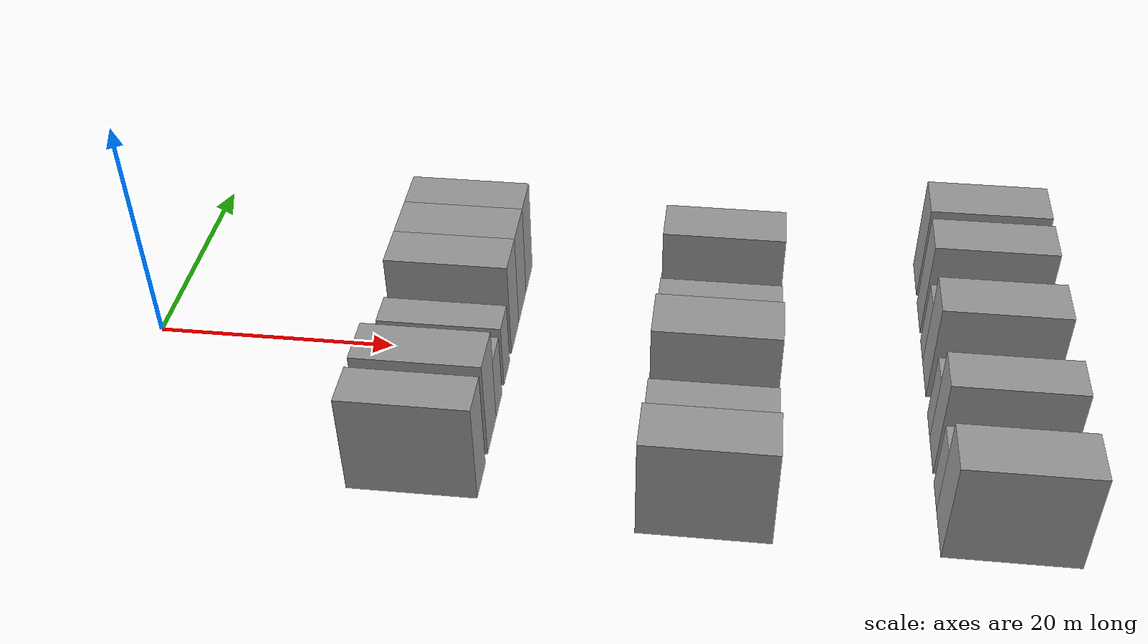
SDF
<sdf version="1.6">
 <world name="default">
  <model name="building_59">
   <static>1</static>
   <pose>25.0000 -14.5144 0 0.000000 0.000000 0.000000</pose>
   <link name="link">
    <pose>0 0 4.50 0 0 0</pose>
    <collision name="collision"><geometry><box><size>10.0000 3.6012 9.0000</size></box></geometry></collision>
    <visual name="visual">
     <cast_shadows>0</cast_shadows>
     <geometry><box><size>10.0000 3.6012 9.0000</size></box></geometry>
     <material>
      <script>
       <uri>model://grey_wall/materials/scripts</uri>
       <uri>model://grey_wall/materials/textures</uri>
       <name>vrc/grey_wall</name>
      </script>
     </material>
    </visual>
   </link>
  </model>
  <model name="building_60">
   <static>1</static>
   <pose>25.0000 -9.7171 0 0.000000 0.000000 0.000000</pose>
   <link name="link">
    <pose>0 0 4.50 0 0 0</pose>
    <collision name="collision"><geometry><box><size>10.0000 3.9933 9.0000</size></box></geometry></collision>
    <visual name="visual">
     <cast_shadows>0</cast_shadows>
     <geometry><box><size>10.0000 3.9933 9.0000</size></box></geometry>
     <material>
      <script>
       <uri>model://grey_wall/materials/scripts</uri>
       <uri>model://grey_wall/materials/textures</uri>
       <name>vrc/grey_wall</name>
      </script>
     </material>
    </visual>
   </link>
  </model>
  <model name="building_61">
   <static>1</static>
   <pose>25.0000 -6.3009 0 0.000000 0.000000 0.000000</pose>
   <link name="link">
    <pose>0 0 3.00 0 0 0</pose>
    <collision name="collision"><geometry><box><size>10.0000 2.8391 6.0000</size></box></geometry></collision>
    <visual name="visual">
     <cast_shadows>0</cast_shadows>
     <geometry><box><size>10.0000 2.8391 6.0000</size></box></geometry>
     <material>
      <script>
       <uri>model://grey_wall/materials/scripts</uri>
       <uri>model://grey_wall/materials/textures</uri>
       <name>vrc/grey_wall</name>
      </script>
     </material>
    </visual>
   </link>
  </model>
  <model name="building_62">
   <static>1</static>
   <pose>25.0000 -2.4091 0 0.000000 0.000000 0.000000</pose>
   <link name="link">
    <pose>0 0 3.00 0 0 0</pose>
    <collision name="collision"><geometry><box><size>10.0000 2.9446 6.0000</size></box></geometry></collision>
    <visual name="visual">
     <cast_shadows>0</cast_shadows>
     <geometry><box><size>10.0000 2.9446 6.0000</size></box></geometry>
     <material>
      <script>
       <uri>model://grey_wall/materials/scripts</uri>
       <uri>model://grey_wall/materials/textures</uri>
       <name>vrc/grey_wall</name>
      </script>
     </material>
    </visual>
   </link>
  </model>
  <model name="building_63">
   <static>1</static>
   <pose>25.0000 2.0167 0 0.000000 0.000000 0.000000</pose>
   <link name="link">
    <pose>0 0 4.50 0 0 0</pose>
    <collision name="collision"><geometry><box><size>10.0000 3.9069 9.0000</size></box></geometry></collision>
    <visual name="visual">
     <cast_shadows>0</cast_shadows>
     <geometry><box><size>10.0000 3.9069 9.0000</size></box></geometry>
     <material>
      <script>
       <uri>model://grey_wall/materials/scripts</uri>
       <uri>model://grey_wall/materials/textures</uri>
       <name>vrc/grey_wall</name>
      </script>
     </material>
    </visual>
   </link>
  </model>
  <model name="building_64">
   <static>1</static>
   <pose>25.0000 6.0637 0 0.000000 0.000000 0.000000</pose>
   <link name="link">
    <pose>0 0 4.50 0 0 0</pose>
    <collision name="collision"><geometry><box><size>10.0000 4.1870 9.0000</size></box></geometry></collision>
    <visual name="visual">
     <cast_shadows>0</cast_shadows>
     <geometry><box><size>10.0000 4.1870 9.0000</size></box></geometry>
     <material>
      <script>
       <uri>model://grey_wall/materials/scripts</uri>
       <uri>model://grey_wall/materials/textures</uri>
       <name>vrc/grey_wall</name>
      </script>
     </material>
    </visual>
   </link>
  </model>
  <model name="building_65">
   <static>1</static>
   <pose>25.0000 10.0209 0 0.000000 0.000000 0.000000</pose>
   <link name="link">
    <pose>0 0 4.50 0 0 0</pose>
    <collision name="collision"><geometry><box><size>10.0000 3.7274 9.0000</size></box></geometry></collision>
    <visual name="visual">
     <cast_shadows>0</cast_shadows>
     <geometry><box><size>10.0000 3.7274 9.0000</size></box></geometry>
     <material>
      <script>
       <uri>model://grey_wall/materials/scripts</uri>
       <uri>model://grey_wall/materials/textures</uri>
       <name>vrc/grey_wall</name>
      </script>
     </material>
    </visual>
   </link>
  </model>
  <model name="building_175">
   <static>1</static>
   <pose>47.0000 -16.2961 0 0.000000 0.000000 0.000000</pose>
   <link name="link">
    <pose>0 0 4.50 0 0 0</pose>
    <collision name="collision"><geometry><box><size>10.0000 4.2819 9.0000</size></box></geometry></collision>
    <visual name="visual">
     <cast_shadows>0</cast_shadows>
     <geometry><box><size>10.0000 4.2819 9.0000</size></box></geometry>
     <material>
      <script>
       <uri>model://grey_wall/materials/scripts</uri>
       <uri>model://grey_wall/materials/textures</uri>
       <name>vrc/grey_wall</name>
      </script>
     </material>
    </visual>
   </link>
  </model>
  <model name="building_176">
   <static>1</static>
   <pose>47.0000 -12.6715 0 0.000000 0.000000 0.000000</pose>
   <link name="link">
    <pose>0 0 3.00 0 0 0</pose>
    <collision name="collision"><geometry><box><size>10.0000 2.9674 6.0000</size></box></geometry></collision>
    <visual name="visual">
     <cast_shadows>0</cast_shadows>
     <geometry><box><size>10.0000 2.9674 6.0000</size></box></geometry>
     <material>
      <script>
       <uri>model://grey_wall/materials/scripts</uri>
       <uri>model://grey_wall/materials/textures</uri>
       <name>vrc/grey_wall</name>
      </script>
     </material>
    </visual>
   </link>
  </model>
  <model name="building_177">
   <static>1</static>
   <pose>47.0000 -9.7440 0 0.000000 0.000000 0.000000</pose>
   <link name="link">
    <pose>0 0 3.00 0 0 0</pose>
    <collision name="collision"><geometry><box><size>10.0000 2.8874 6.0000</size></box></geometry></collision>
    <visual name="visual">
     <cast_shadows>0</cast_shadows>
     <geometry><box><size>10.0000 2.8874 6.0000</size></box></geometry>
     <material>
      <script>
       <uri>model://grey_wall/materials/scripts</uri>
       <uri>model://grey_wall/materials/textures</uri>
       <name>vrc/grey_wall</name>
      </script>
     </material>
    </visual>
   </link>
  </model>
  <model name="building_178">
   <static>1</static>
   <pose>47.0000 -4.0553 0 0.000000 0.000000 0.000000</pose>
   <link name="link">
    <pose>0 0 4.50 0 0 0</pose>
    <collision name="collision"><geometry><box><size>10.0000 4.4900 9.0000</size></box></geometry></collision>
    <visual name="visual">
     <cast_shadows>0</cast_shadows>
     <geometry><box><size>10.0000 4.4900 9.0000</size></box></geometry>
     <material>
      <script>
       <uri>model://grey_wall/materials/scripts</uri>
       <uri>model://grey_wall/materials/textures</uri>
       <name>vrc/grey_wall</name>
      </script>
     </material>
    </visual>
   </link>
  </model>
  <model name="building_179">
   <static>1</static>
   <pose>47.0000 -0.3727 0 0.000000 0.000000 0.000000</pose>
   <link name="link">
    <pose>0 0 3.00 0 0 0</pose>
    <collision name="collision"><geometry><box><size>10.0000 2.8753 6.0000</size></box></geometry></collision>
    <visual name="visual">
     <cast_shadows>0</cast_shadows>
     <geometry><box><size>10.0000 2.8753 6.0000</size></box></geometry>
     <material>
      <script>
       <uri>model://grey_wall/materials/scripts</uri>
       <uri>model://grey_wall/materials/textures</uri>
       <name>vrc/grey_wall</name>
      </script>
     </material>
    </visual>
   </link>
  </model>
  <model name="building_180">
   <static>1</static>
   <pose>47.0000 2.4995 0 0.000000 0.000000 0.000000</pose>
   <link name="link">
    <pose>0 0 3.00 0 0 0</pose>
    <collision name="collision"><geometry><box><size>10.0000 2.8692 6.0000</size></box></geometry></collision>
    <visual name="visual">
     <cast_shadows>0</cast_shadows>
     <geometry><box><size>10.0000 2.8692 6.0000</size></box></geometry>
     <material>
      <script>
       <uri>model://grey_wall/materials/scripts</uri>
       <uri>model://grey_wall/materials/textures</uri>
       <name>vrc/grey_wall</name>
      </script>
     </material>
    </visual>
   </link>
  </model>
  <model name="building_181">
   <static>1</static>
   <pose>47.0000 7.9766 0 0.000000 0.000000 0.000000</pose>
   <link name="link">
    <pose>0 0 4.50 0 0 0</pose>
    <collision name="collision"><geometry><box><size>10.0000 4.0850 9.0000</size></box></geometry></collision>
    <visual name="visual">
     <cast_shadows>0</cast_shadows>
     <geometry><box><size>10.0000 4.0850 9.0000</size></box></geometry>
     <material>
      <script>
       <uri>model://grey_wall/materials/scripts</uri>
       <uri>model://grey_wall/materials/textures</uri>
       <name>vrc/grey_wall</name>
      </script>
     </material>
    </visual>
   </link>
  </model>
  <model name="building_182">
   <static>1</static>
   <pose>47.0000 11.2383 0 0.000000 0.000000 0.000000</pose>
   <link name="link">
    <pose>0 0 3.00 0 0 0</pose>
    <collision name="collision"><geometry><box><size>10.0000 2.4383 6.0000</size></box></geometry></collision>
    <visual name="visual">
     <cast_shadows>0</cast_shadows>
     <geometry><box><size>10.0000 2.4383 6.0000</size></box></geometry>
     <material>
      <script>
       <uri>model://grey_wall/materials/scripts</uri>
       <uri>model://grey_wall/materials/textures</uri>
       <name>vrc/grey_wall</name>
      </script>
     </material>
    </visual>
   </link>
  </model>
  <model name="building_297">
   <static>1</static>
   <pose>69.0000 -16.1501 0 0.000000 0.000000 0.000000</pose>
   <link name="link">
    <pose>0 0 4.50 0 0 0</pose>
    <collision name="collision"><geometry><box><size>10.0000 4.4970 9.0000</size></box></geometry></collision>
    <visual name="visual">
     <cast_shadows>0</cast_shadows>
     <geometry><box><size>10.0000 4.4970 9.0000</size></box></geometry>
     <material>
      <script>
       <uri>model://grey_wall/materials/scripts</uri>
       <uri>model://grey_wall/materials/textures</uri>
       <name>vrc/grey_wall</name>
      </script>
     </material>
    </visual>
   </link>
  </model>
  <model name="building_298">
   <static>1</static>
   <pose>69.0000 -12.4903 0 0.000000 0.000000 0.000000</pose>
   <link name="link">
    <pose>0 0 3.00 0 0 0</pose>
    <collision name="collision"><geometry><box><size>10.0000 2.8227 6.0000</size></box></geometry></collision>
    <visual name="visual">
     <cast_shadows>0</cast_shadows>
     <geometry><box><size>10.0000 2.8227 6.0000</size></box></geometry>
     <material>
      <script>
       <uri>model://grey_wall/materials/scripts</uri>
       <uri>model://grey_wall/materials/textures</uri>
       <name>vrc/grey_wall</name>
      </script>
     </material>
    </visual>
   </link>
  </model>
  <model name="building_299">
   <static>1</static>
   <pose>69.0000 -8.1899 0 0.000000 0.000000 0.000000</pose>
   <link name="link">
    <pose>0 0 4.50 0 0 0</pose>
    <collision name="collision"><geometry><box><size>10.0000 3.7782 9.0000</size></box></geometry></collision>
    <visual name="visual">
     <cast_shadows>0</cast_shadows>
     <geometry><box><size>10.0000 3.7782 9.0000</size></box></geometry>
     <material>
      <script>
       <uri>model://grey_wall/materials/scripts</uri>
       <uri>model://grey_wall/materials/textures</uri>
       <name>vrc/grey_wall</name>
      </script>
     </material>
    </visual>
   </link>
  </model>
  <model name="building_300">
   <static>1</static>
   <pose>69.0000 -4.9347 0 0.000000 0.000000 0.000000</pose>
   <link name="link">
    <pose>0 0 3.00 0 0 0</pose>
    <collision name="collision"><geometry><box><size>10.0000 2.7321 6.0000</size></box></geometry></collision>
    <visual name="visual">
     <cast_shadows>0</cast_shadows>
     <geometry><box><size>10.0000 2.7321 6.0000</size></box></geometry>
     <material>
      <script>
       <uri>model://grey_wall/materials/scripts</uri>
       <uri>model://grey_wall/materials/textures</uri>
       <name>vrc/grey_wall</name>
      </script>
     </material>
    </visual>
   </link>
  </model>
  <model name="building_301">
   <static>1</static>
   <pose>69.0000 0.5396 0 0.000000 0.000000 0.000000</pose>
   <link name="link">
    <pose>0 0 4.50 0 0 0</pose>
    <collision name="collision"><geometry><box><size>10.0000 4.2165 9.0000</size></box></geometry></collision>
    <visual name="visual">
     <cast_shadows>0</cast_shadows>
     <geometry><box><size>10.0000 4.2165 9.0000</size></box></geometry>
     <material>
      <script>
       <uri>model://grey_wall/materials/scripts</uri>
       <uri>model://grey_wall/materials/textures</uri>
       <name>vrc/grey_wall</name>
      </script>
     </material>
    </visual>
   </link>
  </model>
  <model name="building_302">
   <static>1</static>
   <pose>69.0000 4.0239 0 0.000000 0.000000 0.000000</pose>
   <link name="link">
    <pose>0 0 3.00 0 0 0</pose>
    <collision name="collision"><geometry><box><size>10.0000 2.7520 6.0000</size></box></geometry></collision>
    <visual name="visual">
     <cast_shadows>0</cast_shadows>
     <geometry><box><size>10.0000 2.7520 6.0000</size></box></geometry>
     <material>
      <script>
       <uri>model://grey_wall/materials/scripts</uri>
       <uri>model://grey_wall/materials/textures</uri>
       <name>vrc/grey_wall</name>
      </script>
     </material>
    </visual>
   </link>
  </model>
  <model name="building_303">
   <static>1</static>
   <pose>69.0000 8.4220 0 0.000000 0.000000 0.000000</pose>
   <link name="link">
    <pose>0 0 4.50 0 0 0</pose>
    <collision name="collision"><geometry><box><size>10.0000 4.0442 9.0000</size></box></geometry></collision>
    <visual name="visual">
     <cast_shadows>0</cast_shadows>
     <geometry><box><size>10.0000 4.0442 9.0000</size></box></geometry>
     <material>
      <script>
       <uri>model://grey_wall/materials/scripts</uri>
       <uri>model://grey_wall/materials/textures</uri>
       <name>vrc/grey_wall</name>
      </script>
     </material>
    </visual>
   </link>
  </model>
  <model name="building_304">
   <static>1</static>
   <pose>69.0000 13.6377 0 0.000000 0.000000 0.000000</pose>
   <link name="link">
    <pose>0 0 4.50 0 0 0</pose>
    <collision name="collision"><geometry><box><size>10.0000 4.3872 9.0000</size></box></geometry></collision>
    <visual name="visual">
     <cast_shadows>0</cast_shadows>
     <geometry><box><size>10.0000 4.3872 9.0000</size></box></geometry>
     <material>
      <script>
       <uri>model://grey_wall/materials/scripts</uri>
       <uri>model://grey_wall/materials/textures</uri>
       <name>vrc/grey_wall</name>
      </script>
     </material>
    </visual>
   </link>
  </model>
 </world>
</sdf>
